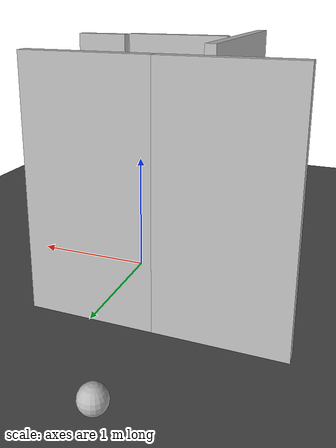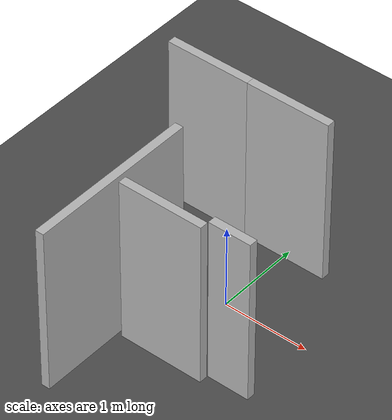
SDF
<?xml version="1.0" ?>
<sdf version='1.4'>
  <world name='default'>

    <physics type='ode'>
      <max_step_size>0.001</max_step_size>
      <real_time_factor>1</real_time_factor>
      <real_time_update_rate>1000</real_time_update_rate>
      <gravity>0 0 -9.8</gravity>
    </physics>

    <spherical_coordinates>
      <surface_model>EARTH_WGS84</surface_model>
      <latitude_deg>0</latitude_deg>
      <longitude_deg>0</longitude_deg>
      <elevation>0</elevation>
      <heading_deg>0</heading_deg>
    </spherical_coordinates>

    <!-- A global light source -->
    <scene>
        <sky>
          <clouds>
            <speed>12</speed>
          </clouds>
        </sky>
    </scene>

    <include>
      <uri>model://sun</uri>
    </include>

    <model name="ground_plane">
      <static>true</static>
      <link name="link">
        <collision name="collision">
          <geometry>
            <plane>
              <normal>0 0 1</normal>
              <size>100 100</size>
            </plane>
          </geometry>
          <surface>
            <friction>
              <ode>
                <mu>10</mu>
                <mu2>5</mu2>
              </ode>
            </friction>
          </surface>
        </collision>
        <visual name="visual">
          <cast_shadows>false</cast_shadows>
          <geometry>
            <plane>
              <normal>0 0 1</normal>
              <size>100 100</size>
            </plane>
          </geometry>
          <material>
            <script>
              <uri>model://asphalt_plane/materials/scripts</uri>
              <uri>model://asphalt_plane/materials/textures</uri>
              <name>vrc/asphalt</name>
            </script>
          </material>
        </visual>
      </link>
    </model>

    <!-- door -->
    <model name="door_stopper">
      <static>true</static>
      <link name="door_stopper">
        <pose>-0.5 1.9 0.1 0 0 0</pose>
        <collision name="col">
          <pose>0 0 0 0 0 0</pose>
          <geometry>
            <sphere>
              <radius>0.1</radius>
            </sphere>
          </geometry>
        </collision>

        <visual name="vis">
          <pose>0 0 0 0 0 0</pose>
          <geometry>
            <sphere>
              <radius>0.1</radius>
            </sphere>
          </geometry>
        </visual>

        <inertial>
          <pose>0 0 0 0 0 0</pose>
          <mass>1</mass>
          <inertia>
            <ixx>1</ixx>
            <ixy>0</ixy>
            <ixz>0</ixz>
            <iyy>1</iyy>
            <iyz>0</iyz>
            <izz>1</izz>
          </inertia>
        </inertial>
      </link>
    </model>

    <model name="revdoor">
      <self_collide>true</self_collide>
      <link name="revdoor_base">
        <pose>-1 1 1 0 0 0</pose>
        <collision name="col1">
          <pose>0 -0.05 0 0 0 0</pose>
          <geometry>
            <box>
              <size>1.0 0.1 2.0</size>
            </box>
          </geometry>
        </collision>

        <visual name="vis1">
          <pose>0 -0.05 0 0 0 0</pose>
          <geometry>
            <box>
              <size>1.0 0.1 2.0</size>
            </box>
          </geometry>
        </visual>

        <inertial>
          <pose>0 -0.05 0 0 0 0</pose>
          <mass>10</mass>
          <inertia>
            <ixx>1</ixx>
            <ixy>0</ixy>
            <ixz>0</ixz>
            <iyy>1</iyy>
            <iyz>0</iyz>
            <izz>1</izz>
          </inertia>
        </inertial>
      </link>

      <link name="revdoor">
        <pose>0 1 1 0 0 0</pose>
        <collision name="col2">
          <pose>0 -0.05 0 0 0 0</pose>
          <geometry>
            <box>
              <size>1.0 0.1 2.0</size>
            </box>
          </geometry>
          <surface>
            <bounce>
              <restitution_coefficient>0.4</restitution_coefficient>
              <threshold>0.05</threshold>
            </bounce>
            <contact>
              <ode>
                <max_vel>10</max_vel>
              </ode>
            </contact>
            <friction>
              <ode>
                <mu>1</mu>
                <mu2>1</mu2>
              </ode>
            </friction>
          </surface>
        </collision>

        <visual name="vis2">
          <pose>0 -0.05 0 0 0 0</pose>
          <geometry>
            <box>
              <size>1.0 0.1 2.0</size>
            </box>
          </geometry>
        </visual>

        <inertial>
          <pose>0 -0.05 0 0 0 0</pose>
          <mass>50</mass>
          <inertia>
            <ixx>1</ixx>
            <ixy>0</ixy>
            <ixz>0</ixz>
            <iyy>1</iyy>
            <iyz>0</iyz>
            <izz>1</izz>
          </inertia>
        </inertial>
      </link>

      <joint name="revdoor_joint" type="revolute">
        <parent>revdoor_base</parent>
        <child>revdoor</child>
        <pose>-0.5 0 0 0 0 0</pose>
        <axis>
          <xyz>0 0 1</xyz>
          <dynamics>
            <damping>0.3</damping>
            <friction>0.1</friction>
          </dynamics>
          <limit>
            <lower>0</lower>
            <upper>1.57</upper>
          </limit>
        </axis>
      </joint>

      <joint name="door_fix" type="prismatic">
        <parent>world</parent>
        <child>revdoor_base</child>
        <pose>0 0 0 0 0 0</pose>
        <axis>
          <xyz>0 0 1</xyz>
          <limit>
            <lower>0.05</lower>
            <upper>0.05</upper>
          </limit>
        </axis>
      </joint>
    </model>

    <model name="slidoor">
      <self_collide>true</self_collide>
      <link name="slidoor_base">
        <pose>0.75 -1 1 0 0 0</pose>
        <collision name="col1">
          <pose>0 0.16 0 0 0 0</pose>
          <geometry>
            <box>
              <size>0.5 0.1 2.0</size>
            </box>
          </geometry>
        </collision>

        <visual name="vis1">
          <pose>0 0.16 0 0 0 0</pose>
          <geometry>
            <box>
              <size>0.5 0.1 2.0</size>
            </box>
          </geometry>
        </visual>

        <inertial>
          <pose>0 0.16 0 0 0 0</pose>
          <mass>10</mass>
          <inertia>
            <ixx>1</ixx>
            <ixy>0</ixy>
            <ixz>0</ixz>
            <iyy>1</iyy>
            <iyz>0</iyz>
            <izz>1</izz>
          </inertia>
        </inertial>
      </link>

      <link name="slidoor">
        <pose>0 -1 1 0 0 0</pose>
        <collision name="col2">
          <pose>0 0.05 0 0 0 0</pose>
          <geometry>
            <box>
              <size>1.0 0.1 2.0</size>
            </box>
          </geometry>
          <surface>
            <bounce>
              <restitution_coefficient>0.2</restitution_coefficient>
              <threshold>0.05</threshold>
            </bounce>
            <contact>
              <ode>
                <max_vel>10</max_vel>
              </ode>
            </contact>
            <friction>
              <ode>
                <mu>1</mu>
                <mu2>1</mu2>
              </ode>
            </friction>
          </surface>
        </collision>

        <visual name="vis2">
          <pose>0 0.05 0 0 0 0</pose>
          <geometry>
            <box>
              <size>1.0 0.1 2.0</size>
            </box>
          </geometry>
        </visual>

        <inertial>
          <pose>0 0.05 0 0 0 0</pose>
          <mass>50</mass>
          <inertia>
            <ixx>1</ixx>
            <ixy>0</ixy>
            <ixz>0</ixz>
            <iyy>1</iyy>
            <iyz>0</iyz>
            <izz>1</izz>
          </inertia>
        </inertial>
      </link>

      <link name="slidoor_side">
        <pose>-0.6 -1 1 0 0 0</pose>
        <collision name="col1">
          <pose>0 0 0 0 0 0</pose>
          <geometry>
            <box>
              <size>0.1 2.0 2.0</size>
            </box>
          </geometry>
          <surface>
            <bounce>
              <restitution_coefficient>0.2</restitution_coefficient>
              <threshold>0.05</threshold>
            </bounce>
            <contact>
              <ode>
                <max_vel>10</max_vel>
              </ode>
            </contact>
            <friction>
              <ode>
                <mu>1</mu>
                <mu2>1</mu2>
              </ode>
            </friction>
          </surface>
        </collision>

        <visual name="vis1">
          <pose>0 0 0 0 0 0</pose>
          <geometry>
            <box>
              <size>0.1 2.0 2.0</size>
            </box>
          </geometry>
        </visual>

        <inertial>
          <pose>0 0 0 0 0 0</pose>
          <mass>10</mass>
          <inertia>
            <ixx>1</ixx>
            <ixy>0</ixy>
            <ixz>0</ixz>
            <iyy>1</iyy>
            <iyz>0</iyz>
            <izz>1</izz>
          </inertia>
        </inertial>
      </link>

      <link name="slidoor_knob">
        <pose>-0.4 -0.9 1 0 0 0</pose>
        <collision name="col2">
          <pose>0 0 0 0 0 0</pose>
          <geometry>
            <cylinder>
              <radius>0.02</radius>
              <length>0.3</length>
            </cylinder>
          </geometry>
          <surface>
            <bounce>
              <restitution_coefficient>0.2</restitution_coefficient>
              <threshold>0.05</threshold>
            </bounce>
            <contact>
              <ode>
                <max_vel>10</max_vel>
              </ode>
            </contact>
            <friction>
              <ode>
                <mu>1</mu>
                <mu2>1</mu2>
              </ode>
            </friction>
          </surface>
        </collision>

        <visual name="vis2">
          <pose>0 0 0 0 0 0</pose>
          <geometry>
            <cylinder>
              <radius>0.02</radius>
              <length>0.3</length>
            </cylinder>
          </geometry>
        </visual>

        <inertial>
          <pose>0 0 0 0 0 0</pose>
          <mass>2</mass>
          <inertia>
            <ixx>1</ixx>
            <ixy>0</ixy>
            <ixz>0</ixz>
            <iyy>1</iyy>
            <iyz>0</iyz>
            <izz>1</izz>
          </inertia>
        </inertial>
      </link>

      <joint name="slidoor_joint" type="prismatic">
        <parent>slidoor_base</parent>
        <child>slidoor</child>
        <pose>-0.5 0 0 0 0 0</pose>
        <axis>
          <xyz>1 0 0</xyz>
          <dynamics>
            <damping>0.3</damping>
            <friction>0.1</friction>
          </dynamics>
          <limit>
            <lower>0</lower>
            <upper>1.0</upper>
          </limit>
        </axis>
      </joint>

      <joint name="door_fix" type="prismatic">
        <parent>world</parent>
        <child>slidoor_base</child>
        <pose>0 0 0 0 0 0</pose>
        <axis>
          <xyz>0 0 1</xyz>
          <limit>
            <lower>0.05</lower>
            <upper>0.05</upper>
          </limit>
        </axis>
      </joint>

      <joint name="side_fix" type="prismatic">
        <parent>world</parent>
        <child>slidoor_side</child>
        <pose>0 0 0 0 0 0</pose>
        <axis>
          <xyz>0 0 1</xyz>
          <limit>
            <lower>0.05</lower>
            <upper>0.05</upper>
          </limit>
        </axis>
      </joint>

      <joint name="door_knob" type="prismatic">
        <parent>slidoor</parent>
        <child>slidoor_knob</child>
        <pose>0 0 0 0 0 0</pose>
        <axis>
          <xyz>0 1 0</xyz>
          <limit>
            <lower>0.1</lower>
            <upper>0.1</upper>
          </limit>
        </axis>
      </joint>

    </model>
  </world>
</sdf>
